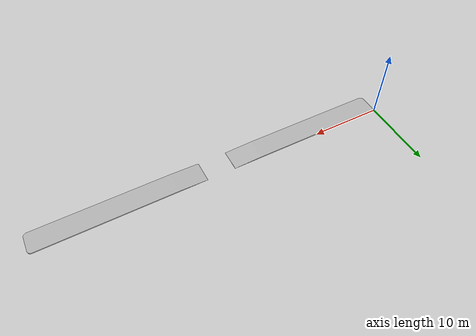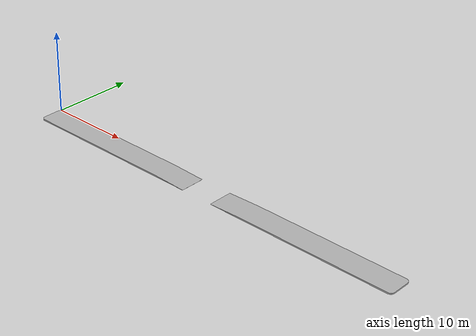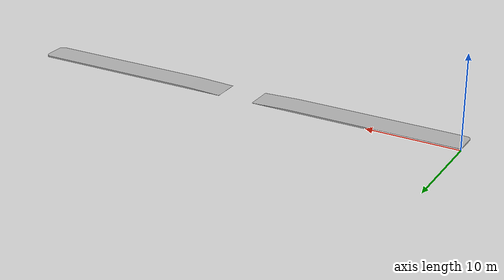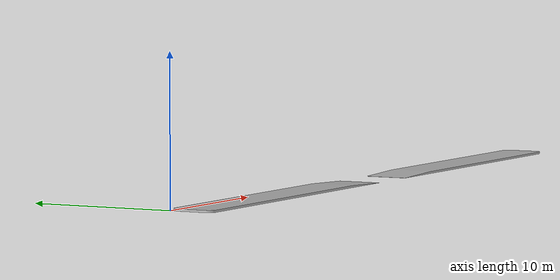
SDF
<?xml version="1.0" ?>
<sdf version='1.4'>
  <model name="side_walk">
      <static>1</static>
      <link name='link'>
      <pose>0 0 0 1.57 0 0</pose>
        <inertial>
          <mass>0.0189132</mass>
          <inertia>
            <ixx>3.36060179959e-06</ixx>
            <ixy>0.000000</ixy>
            <ixz>0.000000</ixz>
            <iyy>3.36060179959e-06</iyy>
            <iyz>0.000000</iyz>
            <izz>1.34975977923e-06</izz>
          </inertia>
        </inertial>
        <collision name='collision'>
          <geometry>
            <mesh>
              <uri>model://side_walk/meshes/side_walk.dae</uri>
              <scale>0.001 0.001 0.001</scale>
            </mesh>
          </geometry>
          <surface>
            <friction>
              <ode>
                <mu>30.0</mu>
                <mu2>30.0</mu2>
              </ode>
            </friction>
          </surface>
        </collision>
        <visual name='visual'>
          <geometry>
            <mesh>
              <uri>model://side_walk/meshes/side_walk.dae</uri>
              <scale>0.001 0.001 0.001</scale>
            </mesh>
          </geometry>
        </visual>
        <velocity_decay>
          <linear>0.000000</linear>
          <angular>0.000000</angular>
        </velocity_decay>
        <self_collide>0</self_collide>
        <kinematic>0</kinematic>
        <gravity>1</gravity>
      </link>
  </model>
</sdf>
